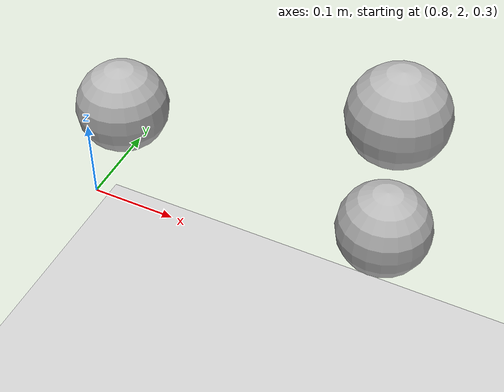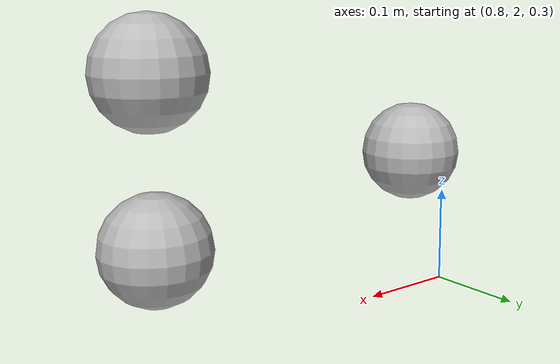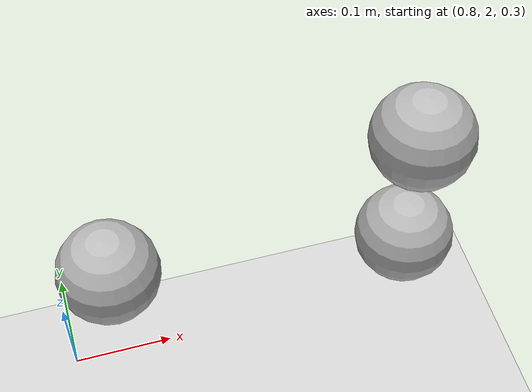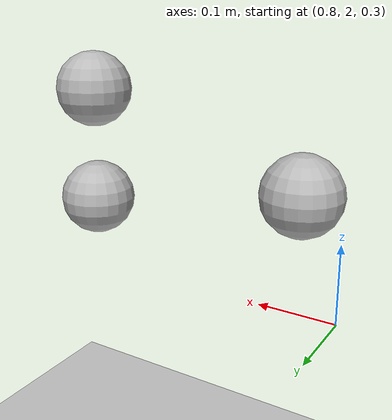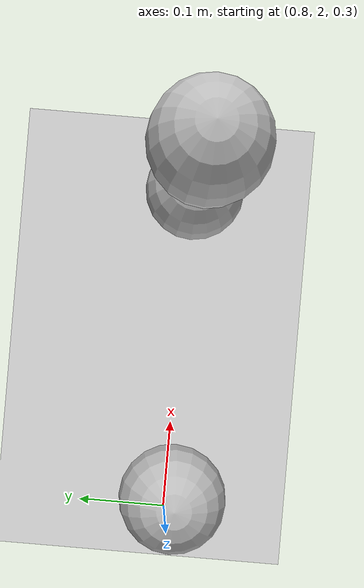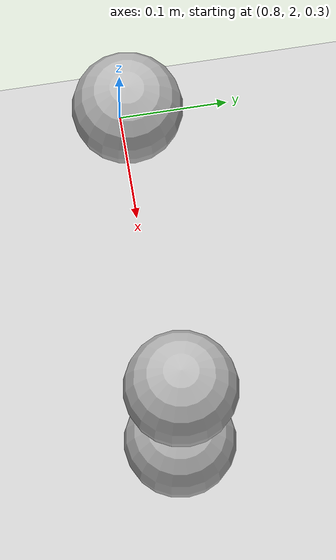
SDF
<?xml version="1.0"?>
<sdf version="1.4">
  <world name="default">

    <include>
      <uri>model://sun</uri>
    </include>
    <include>
      <uri>model://ground_plane</uri>
    </include>

  <model name="my_model">
    <pose>1 2 0.5 0 0 0</pose>
    <static>true</static>
    <link name="link1">
	  <collision name='ball1_collision'>
	    <pose>-0.15 0 -0.05 0 0 0</pose>
	    <geometry>
		<sphere>
		<radius>.05</radius>
	      </sphere>
	    </geometry>

	    <surface>
	      <friction>
		<ode>
		  <mu>0</mu>
		  <mu2>0</mu2>
		  <slip1>1.0</slip1>
		  <slip2>1.0</slip2>
		</ode>
	      </friction>
	    </surface>
	  </collision>

	  <visual name='ball1_visual'>
	    <pose>-0.15 0 -0.05 0 0 0</pose>
	    <geometry>
	      <sphere>
		<radius>.05</radius>
	      </sphere>
	    </geometry>
	  </visual>
    </link>

    <link name="link2">
	  <collision name='ball2_collision'>
	    <pose>0.15 0 0.05 0 0 0</pose>
	    <geometry>
		<sphere>
		<radius>.05</radius>
	      </sphere>
	    </geometry>

	    <surface>
	      <friction>
		<ode>
		  <mu>0</mu>
		  <mu2>0</mu2>
		  <slip1>1.0</slip1>
		  <slip2>1.0</slip2>
		</ode>
	      </friction>
	    </surface>
	  </collision>

	  <visual name='ball2_visual'>
	    <pose>0.15 0 0.05 0 0 0</pose>
	    <geometry>
	      <sphere>
		<radius>.05</radius>
	      </sphere>
	    </geometry>
	  </visual>
    </link>

    <link name="link3">
	  <collision name='ball3_collision'>
	    <pose>0.15 0 -0.1 0 0 0</pose>
	    <geometry>
		<sphere>
		<radius>.05</radius>
	      </sphere>
	    </geometry>

	    <surface>
	      <friction>
		<ode>
		  <mu>0</mu>
		  <mu2>0</mu2>
		  <slip1>1.0</slip1>
		  <slip2>1.0</slip2>
		</ode>
	      </friction>
	    </surface>
	  </collision>

	  <visual name='ball3_visual'>
	    <pose>0.15 0 -0.1 0 0 0</pose>
	    <geometry>
	      <sphere>
		<radius>.05</radius>
	      </sphere>
	    </geometry>
	  </visual>
    </link>
  </model>

  </world>
</sdf>
